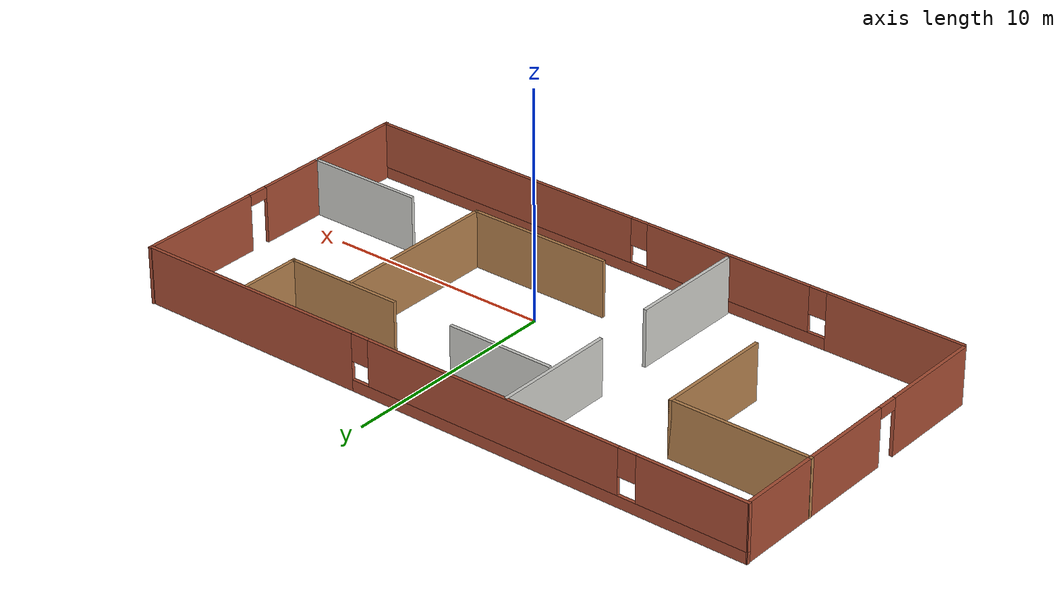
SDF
<?xml version='1.0'?>
<sdf version='1.6'>
  <model name='wall2'>
    <pose frame=''>-1.83862 1.41721 0 0 -0 0</pose>
    <link name='Wall_0'>
      <pose frame=''>0.0701 -6.80102 0 0 0 -0.002151</pose>
      <visual name='Wall_0_Visual_0'>
        <pose frame=''>-11.2183 0 1.25 0 -0 0</pose>
        <geometry>
          <box>
            <size>6.15515 0.15 2.5</size>
          </box>
        </geometry>
        <material>
          <script>
            <uri>file://media/materials/scripts/gazebo.material</uri>
            <name>Gazebo/Bricks</name>
          </script>
          <ambient>1 1 1 1</ambient>
        </material>
      </visual>
      <collision name='Wall_0_Collision_0'>
        <geometry>
          <box>
            <size>6.15515 0.15 2.5</size>
          </box>
        </geometry>
        <pose frame=''>-11.2183 0 1.25 0 -0 0</pose>
      </collision>
      <visual name='Wall_0_Visual_1'>
        <pose frame=''>3.07757 0 0.25 0 -0 0</pose>
        <geometry>
          <box>
            <size>22.4367 0.15 0.5</size>
          </box>
        </geometry>
        <material>
          <script>
            <uri>file://media/materials/scripts/gazebo.material</uri>
            <name>Gazebo/Bricks</name>
          </script>
          <ambient>1 1 1 1</ambient>
        </material>
      </visual>
      <collision name='Wall_0_Collision_1'>
        <geometry>
          <box>
            <size>22.4367 0.15 0.5</size>
          </box>
        </geometry>
        <pose frame=''>3.07757 0 0.25 0 -0 0</pose>
      </collision>
      <visual name='Wall_0_Visual_2'>
        <pose frame=''>-3.44996 0 1.5 0 -0 0</pose>
        <geometry>
          <box>
            <size>7.78163 0.15 2</size>
          </box>
        </geometry>
        <material>
          <script>
            <uri>file://media/materials/scripts/gazebo.material</uri>
            <name>Gazebo/Bricks</name>
          </script>
          <ambient>1 1 1 1</ambient>
        </material>
      </visual>
      <collision name='Wall_0_Collision_2'>
        <geometry>
          <box>
            <size>7.78163 0.15 2</size>
          </box>
        </geometry>
        <pose frame=''>-3.44996 0 1.5 0 -0 0</pose>
      </collision>
      <visual name='Wall_0_Visual_3'>
        <pose frame=''>7.76839 0 1.5 0 -0 0</pose>
        <geometry>
          <box>
            <size>13.0551 0.15 2</size>
          </box>
        </geometry>
        <material>
          <script>
            <uri>file://media/materials/scripts/gazebo.material</uri>
            <name>Gazebo/Bricks</name>
          </script>
          <ambient>1 1 1 1</ambient>
        </material>
      </visual>
      <collision name='Wall_0_Collision_3'>
        <geometry>
          <box>
            <size>13.0551 0.15 2</size>
          </box>
        </geometry>
        <pose frame=''>7.76839 0 1.5 0 -0 0</pose>
      </collision>
      <visual name='Wall_0_Visual_4'>
        <pose frame=''>-7.74077 0 1.9 0 -0 0</pose>
        <geometry>
          <box>
            <size>0.8 0.15 1.2</size>
          </box>
        </geometry>
        <material>
          <script>
            <uri>file://media/materials/scripts/gazebo.material</uri>
            <name>Gazebo/Bricks</name>
          </script>
          <ambient>1 1 1 1</ambient>
        </material>
      </visual>
      <collision name='Wall_0_Collision_4'>
        <geometry>
          <box>
            <size>0.8 0.15 1.2</size>
          </box>
        </geometry>
        <pose frame=''>-7.74077 0 1.9 0 -0 0</pose>
      </collision>
      <visual name='Wall_0_Visual_5'>
        <pose frame=''>0.840861 0 1.9 0 -0 0</pose>
        <geometry>
          <box>
            <size>0.8 0.15 1.2</size>
          </box>
        </geometry>
        <material>
          <script>
            <uri>file://media/materials/scripts/gazebo.material</uri>
            <name>Gazebo/Bricks</name>
          </script>
          <ambient>1 1 1 1</ambient>
        </material>
      </visual>
      <collision name='Wall_0_Collision_5'>
        <geometry>
          <box>
            <size>0.8 0.15 1.2</size>
          </box>
        </geometry>
        <pose frame=''>0.840861 0 1.9 0 -0 0</pose>
      </collision>
    </link>
    <link name='Wall_1'>
      <pose frame=''>14.2757 0 0 0 -0 1.57302</pose>
      <visual name='Wall_1_Visual_0'>
        <pose frame=''>-3.24103 0 1.25 0 -0 0</pose>
        <geometry>
          <box>
            <size>7.39238 0.15 2.5</size>
          </box>
        </geometry>
        <material>
          <script>
            <uri>file://media/materials/scripts/gazebo.material</uri>
            <name>Gazebo/Bricks</name>
          </script>
          <ambient>1 1 1 1</ambient>
        </material>
      </visual>
      <collision name='Wall_1_Collision_0'>
        <geometry>
          <box>
            <size>7.39238 0.15 2.5</size>
          </box>
        </geometry>
        <pose frame=''>-3.24103 0 1.25 0 -0 0</pose>
      </collision>
      <visual name='Wall_1_Visual_1'>
        <pose frame=''>4.14619 0 1.25 0 -0 0</pose>
        <geometry>
          <box>
            <size>5.58206 0.15 2.5</size>
          </box>
        </geometry>
        <material>
          <script>
            <uri>file://media/materials/scripts/gazebo.material</uri>
            <name>Gazebo/Bricks</name>
          </script>
          <ambient>1 1 1 1</ambient>
        </material>
      </visual>
      <collision name='Wall_1_Collision_1'>
        <geometry>
          <box>
            <size>5.58206 0.15 2.5</size>
          </box>
        </geometry>
        <pose frame=''>4.14619 0 1.25 0 -0 0</pose>
      </collision>
      <visual name='Wall_1_Visual_2'>
        <pose frame=''>0.905161 0 2.25 0 -0 0</pose>
        <geometry>
          <box>
            <size>0.9 0.15 0.5</size>
          </box>
        </geometry>
        <material>
          <script>
            <uri>file://media/materials/scripts/gazebo.material</uri>
            <name>Gazebo/Bricks</name>
          </script>
          <ambient>1 1 1 1</ambient>
        </material>
      </visual>
      <collision name='Wall_1_Collision_2'>
        <geometry>
          <box>
            <size>0.9 0.15 0.5</size>
          </box>
        </geometry>
        <pose frame=''>0.905161 0 2.25 0 -0 0</pose>
      </collision>
    </link>
    <link name='Wall_10'>
      <collision name='Wall_10_Collision'>
        <geometry>
          <box>
            <size>5.25 0.15 2.5</size>
          </box>
        </geometry>
        <pose frame=''>0 0 1.25 0 -0 0</pose>
      </collision>
      <visual name='Wall_10_Visual'>
        <pose frame=''>0 0 1.25 0 -0 0</pose>
        <geometry>
          <box>
            <size>5.25 0.15 2.5</size>
          </box>
        </geometry>
        <material>
          <script>
            <uri>file://media/materials/scripts/gazebo.material</uri>
            <name>Gazebo/CeilingTiled</name>
          </script>
          <ambient>1 0.764706 0.305882 1</ambient>
        </material>
      </visual>
      <pose frame=''>-3.51097 -4.01292 0 0 0 -1.5708</pose>
    </link>
    <link name='Wall_12'>
      <collision name='Wall_12_Collision'>
        <geometry>
          <box>
            <size>4.75 0.15 2.5</size>
          </box>
        </geometry>
        <pose frame=''>0 0 1.25 0 -0 0</pose>
      </collision>
      <visual name='Wall_12_Visual'>
        <pose frame=''>0 0 1.25 0 -0 0</pose>
        <geometry>
          <box>
            <size>4.75 0.15 2.5</size>
          </box>
        </geometry>
        <material>
          <script>
            <uri>file://media/materials/scripts/gazebo.material</uri>
            <name>Gazebo/CeilingTiled</name>
          </script>
          <ambient>1 1 1 1</ambient>
        </material>
      </visual>
      <pose frame=''>-0.999901 4.06014 0 0 -0 0</pose>
    </link>
    <link name='Wall_14'>
      <collision name='Wall_14_Collision'>
        <geometry>
          <box>
            <size>5.25 0.15 2.5</size>
          </box>
        </geometry>
        <pose frame=''>0 0 1.25 0 -0 0</pose>
      </collision>
      <visual name='Wall_14_Visual'>
        <pose frame=''>0 0 1.25 0 -0 0</pose>
        <geometry>
          <box>
            <size>5.25 0.15 2.5</size>
          </box>
        </geometry>
        <material>
          <script>
            <uri>file://media/materials/scripts/gazebo.material</uri>
            <name>Gazebo/Wood</name>
          </script>
          <ambient>1 1 1 1</ambient>
        </material>
      </visual>
      <pose frame=''>6.74318 4.09532 0 0 -0 0</pose>
    </link>
    <link name='Wall_16'>
      <collision name='Wall_16_Collision'>
        <geometry>
          <box>
            <size>2.75 0.15 2.5</size>
          </box>
        </geometry>
        <pose frame=''>0 0 1.25 0 -0 0</pose>
      </collision>
      <visual name='Wall_16_Visual'>
        <pose frame=''>0 0 1.25 0 -0 0</pose>
        <geometry>
          <box>
            <size>2.75 0.15 2.5</size>
          </box>
        </geometry>
        <material>
          <script>
            <uri>file://media/materials/scripts/gazebo.material</uri>
            <name>Gazebo/Wood</name>
          </script>
          <ambient>1 1 1 1</ambient>
        </material>
      </visual>
      <pose frame=''>9.29317 5.39532 0 0 -0 1.5708</pose>
    </link>
    <link name='Wall_18'>
      <collision name='Wall_18_Collision'>
        <geometry>
          <box>
            <size>7.5 0.15 2.5</size>
          </box>
        </geometry>
        <pose frame=''>0 0 1.25 0 -0 0</pose>
      </collision>
      <visual name='Wall_18_Visual'>
        <pose frame=''>0 0 1.25 0 -0 0</pose>
        <geometry>
          <box>
            <size>7.5 0.15 2.5</size>
          </box>
        </geometry>
        <material>
          <script>
            <uri>file://media/materials/scripts/gazebo.material</uri>
            <name>Gazebo/Wood</name>
          </script>
          <ambient>1 1 1 1</ambient>
        </material>
      </visual>
      <pose frame=''>6.40944 0.314786 0 0 0 -1.5708</pose>
    </link>
    <link name='Wall_2'>
      <pose frame=''>-0.015256 6.78573 0 0 0 -3.13838</pose>
      <visual name='Wall_2_Visual_0'>
        <pose frame=''>-9.09297 0 1.25 0 -0 0</pose>
        <geometry>
          <box>
            <size>10.5155 0.15 2.5</size>
          </box>
        </geometry>
        <material>
          <script>
            <uri>file://media/materials/scripts/gazebo.material</uri>
            <name>Gazebo/Bricks</name>
          </script>
          <ambient>1 1 1 1</ambient>
        </material>
      </visual>
      <collision name='Wall_2_Collision_0'>
        <geometry>
          <box>
            <size>10.5155 0.15 2.5</size>
          </box>
        </geometry>
        <pose frame=''>-9.09297 0 1.25 0 -0 0</pose>
      </collision>
      <visual name='Wall_2_Visual_1'>
        <pose frame=''>5.25776 0 0.25 0 -0 0</pose>
        <geometry>
          <box>
            <size>18.1859 0.15 0.5</size>
          </box>
        </geometry>
        <material>
          <script>
            <uri>file://media/materials/scripts/gazebo.material</uri>
            <name>Gazebo/Bricks</name>
          </script>
          <ambient>1 1 1 1</ambient>
        </material>
      </visual>
      <collision name='Wall_2_Collision_1'>
        <geometry>
          <box>
            <size>18.1859 0.15 0.5</size>
          </box>
        </geometry>
        <pose frame=''>5.25776 0 0.25 0 -0 0</pose>
      </collision>
      <visual name='Wall_2_Visual_2'>
        <pose frame=''>2.81619 0 1.5 0 -0 0</pose>
        <geometry>
          <box>
            <size>11.7028 0.15 2</size>
          </box>
        </geometry>
        <material>
          <script>
            <uri>file://media/materials/scripts/gazebo.material</uri>
            <name>Gazebo/Bricks</name>
          </script>
          <ambient>1 1 1 1</ambient>
        </material>
      </visual>
      <collision name='Wall_2_Collision_2'>
        <geometry>
          <box>
            <size>11.7028 0.15 2</size>
          </box>
        </geometry>
        <pose frame=''>2.81619 0 1.5 0 -0 0</pose>
      </collision>
      <visual name='Wall_2_Visual_3'>
        <pose frame=''>11.9092 0 1.5 0 -0 0</pose>
        <geometry>
          <box>
            <size>4.88314 0.15 2</size>
          </box>
        </geometry>
        <material>
          <script>
            <uri>file://media/materials/scripts/gazebo.material</uri>
            <name>Gazebo/Bricks</name>
          </script>
          <ambient>1 1 1 1</ambient>
        </material>
      </visual>
      <collision name='Wall_2_Collision_3'>
        <geometry>
          <box>
            <size>4.88314 0.15 2</size>
          </box>
        </geometry>
        <pose frame=''>11.9092 0 1.5 0 -0 0</pose>
      </collision>
      <visual name='Wall_2_Visual_4'>
        <pose frame=''>-3.43521 0 1.9 0 -0 0</pose>
        <geometry>
          <box>
            <size>0.8 0.15 1.2</size>
          </box>
        </geometry>
        <material>
          <script>
            <uri>file://media/materials/scripts/gazebo.material</uri>
            <name>Gazebo/Bricks</name>
          </script>
          <ambient>1 1 1 1</ambient>
        </material>
      </visual>
      <collision name='Wall_2_Collision_4'>
        <geometry>
          <box>
            <size>0.8 0.15 1.2</size>
          </box>
        </geometry>
        <pose frame=''>-3.43521 0 1.9 0 -0 0</pose>
      </collision>
      <visual name='Wall_2_Visual_5'>
        <pose frame=''>9.06759 0 1.9 0 -0 0</pose>
        <geometry>
          <box>
            <size>0.8 0.15 1.2</size>
          </box>
        </geometry>
        <material>
          <script>
            <uri>file://media/materials/scripts/gazebo.material</uri>
            <name>Gazebo/Bricks</name>
          </script>
          <ambient>1 1 1 1</ambient>
        </material>
      </visual>
      <collision name='Wall_2_Collision_5'>
        <geometry>
          <box>
            <size>0.8 0.15 1.2</size>
          </box>
        </geometry>
        <pose frame=''>9.06759 0 1.9 0 -0 0</pose>
      </collision>
    </link>
    <link name='Wall_20'>
      <collision name='Wall_20_Collision'>
        <geometry>
          <box>
            <size>6.5 0.15 2.5</size>
          </box>
        </geometry>
        <pose frame=''>0 0 1.25 0 -0 0</pose>
      </collision>
      <visual name='Wall_20_Visual'>
        <pose frame=''>0 0 1.25 0 -0 0</pose>
        <geometry>
          <box>
            <size>6.5 0.15 2.5</size>
          </box>
        </geometry>
        <material>
          <script>
            <uri>file://media/materials/scripts/gazebo.material</uri>
            <name>Gazebo/Wood</name>
          </script>
          <ambient>1 1 1 1</ambient>
        </material>
      </visual>
      <pose frame=''>3.23444 -3.36021 0 0 -0 3.14159</pose>
    </link>
    <link name='Wall_22'>
      <collision name='Wall_22_Collision'>
        <geometry>
          <box>
            <size>5.25 0.15 2.5</size>
          </box>
        </geometry>
        <pose frame=''>0 0 1.25 0 -0 0</pose>
      </collision>
      <visual name='Wall_22_Visual'>
        <pose frame=''>0 0 1.25 0 -0 0</pose>
        <geometry>
          <box>
            <size>5.25 0.15 2.5</size>
          </box>
        </geometry>
        <material>
          <script>
            <uri>file://media/materials/scripts/gazebo.material</uri>
            <name>Gazebo/CeilingTiled</name>
          </script>
          <ambient>1 1 1 1</ambient>
        </material>
      </visual>
      <pose frame=''>11.7395 -2.62382 0 0 -0 3.14159</pose>
    </link>
    <link name='Wall_3'>
      <pose frame=''>-14.2603 0.06484 0 0 0 -1.5708</pose>
      <visual name='Wall_3_Visual_0'>
        <pose frame=''>-2.75484 0 1.25 0 -0 0</pose>
        <geometry>
          <box>
            <size>7.99032 0.15 2.5</size>
          </box>
        </geometry>
        <material>
          <script>
            <uri>file://media/materials/scripts/gazebo.material</uri>
            <name>Gazebo/Bricks</name>
          </script>
          <ambient>1 1 1 1</ambient>
        </material>
      </visual>
      <collision name='Wall_3_Collision_0'>
        <geometry>
          <box>
            <size>7.99032 0.15 2.5</size>
          </box>
        </geometry>
        <pose frame=''>-2.75484 0 1.25 0 -0 0</pose>
      </collision>
      <visual name='Wall_3_Visual_1'>
        <pose frame=''>4.44516 0 1.25 0 -0 0</pose>
        <geometry>
          <box>
            <size>4.60968 0.15 2.5</size>
          </box>
        </geometry>
        <material>
          <script>
            <uri>file://media/materials/scripts/gazebo.material</uri>
            <name>Gazebo/Bricks</name>
          </script>
          <ambient>1 1 1 1</ambient>
        </material>
      </visual>
      <collision name='Wall_3_Collision_1'>
        <geometry>
          <box>
            <size>4.60968 0.15 2.5</size>
          </box>
        </geometry>
        <pose frame=''>4.44516 0 1.25 0 -0 0</pose>
      </collision>
      <visual name='Wall_3_Visual_2'>
        <pose frame=''>1.69032 0 2.25 0 -0 0</pose>
        <geometry>
          <box>
            <size>0.9 0.15 0.5</size>
          </box>
        </geometry>
        <material>
          <script>
            <uri>file://media/materials/scripts/gazebo.material</uri>
            <name>Gazebo/Bricks</name>
          </script>
          <ambient>1 1 1 1</ambient>
        </material>
      </visual>
      <collision name='Wall_3_Collision_2'>
        <geometry>
          <box>
            <size>0.9 0.15 0.5</size>
          </box>
        </geometry>
        <pose frame=''>1.69032 0 2.25 0 -0 0</pose>
      </collision>
    </link>
    <link name='Wall_5'>
      <collision name='Wall_5_Collision'>
        <geometry>
          <box>
            <size>6.25 0.15 2.5</size>
          </box>
        </geometry>
        <pose frame=''>0 0 1.25 0 -0 0</pose>
      </collision>
      <visual name='Wall_5_Visual'>
        <pose frame=''>0 0 1.25 0 -0 0</pose>
        <geometry>
          <box>
            <size>6.25 0.15 2.5</size>
          </box>
        </geometry>
        <material>
          <script>
            <uri>file://media/materials/scripts/gazebo.material</uri>
            <name>Gazebo/Wood</name>
          </script>
          <ambient>0.435294 0.796078 0.67451 1</ambient>
        </material>
      </visual>
      <pose frame=''>-11.2257 3.07514 0 0 -0 0</pose>
    </link>
    <link name='Wall_6'>
      <collision name='Wall_6_Collision'>
        <geometry>
          <box>
            <size>5.25 0.15 2.5</size>
          </box>
        </geometry>
        <pose frame=''>0 0 1.25 0 -0 0</pose>
      </collision>
      <visual name='Wall_6_Visual'>
        <pose frame=''>0 0 1.25 0 -0 0</pose>
        <geometry>
          <box>
            <size>5.25 0.15 2.5</size>
          </box>
        </geometry>
        <material>
          <script>
            <uri>file://media/materials/scripts/gazebo.material</uri>
            <name>Gazebo/Wood</name>
          </script>
          <ambient>0.435294 0.796078 0.67451 1</ambient>
        </material>
      </visual>
      <pose frame=''>-8.17568 0.525138 0 0 0 -1.5708</pose>
    </link>
    <link name='Wall_8'>
      <collision name='Wall_8_Collision'>
        <geometry>
          <box>
            <size>5.5 0.15 2.5</size>
          </box>
        </geometry>
        <pose frame=''>0 0 1.25 0 -0 0</pose>
      </collision>
      <visual name='Wall_8_Visual'>
        <pose frame=''>0 0 1.25 0 -0 0</pose>
        <geometry>
          <box>
            <size>5.5 0.15 2.5</size>
          </box>
        </geometry>
        <material>
          <script>
            <uri>file://media/materials/scripts/gazebo.material</uri>
            <name>Gazebo/CeilingTiled</name>
          </script>
          <ambient>1 1 1 1</ambient>
        </material>
      </visual>
      <pose frame=''>-3.54615 4.02355 0 0 0 -1.5708</pose>
    </link>
    <static>1</static>
  </model>
</sdf>
